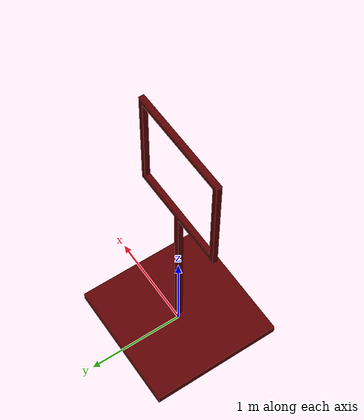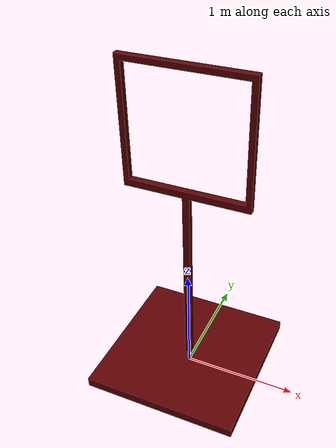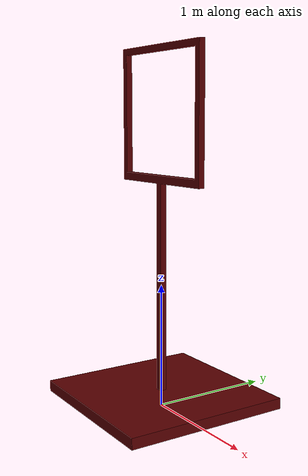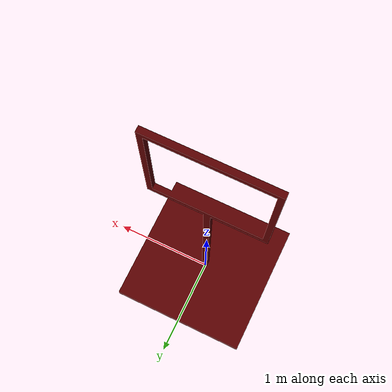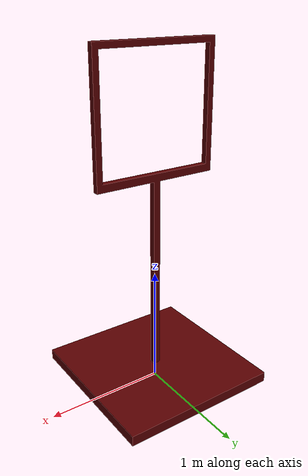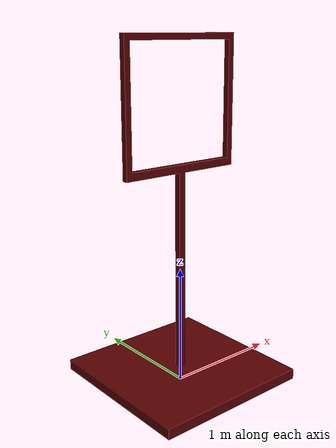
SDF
<?xml version="1.0" ?>
<sdf version="1.5">
	<model name="gate">
		<static>true</static>
		<link name="gate">
			<visual name="visual">
				<pose>0 0 0 0 0 0</pose>
			  <geometry>
				<mesh>
				  <uri>model://custom_gate/meshes/gate.dae</uri>
				</mesh>
			  </geometry>
			</visual>
		</link>
	</model>
</sdf>
